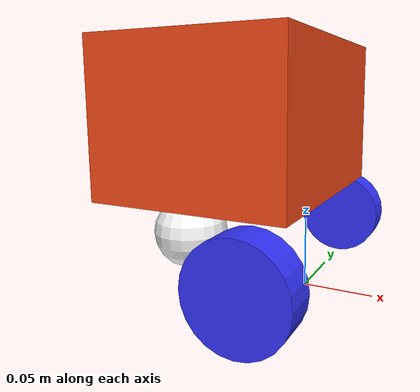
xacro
<?xml version="1.0"?>
<robot xmlns:xacro="http://www.ros.org/wiki/xacro" >

    <xacro:include filename="inertial_macros.xacro"/>

    <xacro:property name="chassis_length" value="0.14"/>
    <xacro:property name="chassis_width" value="0.175"/>
    <xacro:property name="chassis_height" value="0.110"/>
    <xacro:property name="chassis_mass" value="1.0"/>
    <xacro:property name="wheel_radius" value="0.034"/>
    <xacro:property name="wheel_thickness" value="0.025"/>
    <xacro:property name="wheel_mass" value="0.02"/>
    <xacro:property name="chassis_offset_x" value="0.12"/>
    <xacro:property name="wheel_offset_y" value="0.1"/>
    <xacro:property name="chassis_offset_z" value="0.035"/>
    <xacro:property name="caster_wheel_radius" value="0.03"/>
    <xacro:property name="caster_wheel_mass" value="0.04"/>
    <xacro:property name="caster_wheel_offset_x" value="0.02"/>
    <xacro:property name="caster_wheel_offset_z" value="-0.04"/>

     <material name="white">
        <color rgba="1 1 1 1" />
    </material>

    <material name="orange">
        <color rgba="1 0.3 0.1 1"/>
    </material>

    <material name="blue">
        <color rgba="0.2 0.2 1 1"/>
    </material>

    <material name="black">
        <color rgba="0 0 0 1"/>
    </material>

    <material name="red">
        <color rgba="1 0 0 1"/>
    </material>

     <link name="base_footprint"/>

    <!-- BASE LINK -->
    <link name="base_link"></link>

    <!-- BASE_FOOTPRINT LINK -->
    <joint name="base_footprint_joint" type="fixed">
        <parent link="base_footprint"/>
        <child link="base_link"/>
        <origin xyz="0 0 ${wheel_radius}" rpy="0 0 0"/>
    </joint>

    <!-- CHASSIS LINK -->
    <!-- The box origin is at the bottom and back, the chassis relate to base_link is -->
    <!-- chassic move left by ( ${-wheel_offset_x} ) and move up by ${wheel_offset_z}) -->
    <!-- relative to the origin <0, 0, 0>-->
    <joint name="chassis_joint" type="fixed">
        <parent link="base_link"/>
        <child link="chassis"/>
        <origin xyz="${-chassis_offset_x} 0 ${chassis_offset_z}"/>
    </joint>

    <link name="chassis">
        <visual>
            <origin xyz="${chassis_length/2} 0 ${chassis_height/2}"/>
            <geometry>
                <box size="${chassis_length} ${chassis_width} ${chassis_height}"/>
            </geometry>
            <material name="orange"/>
        </visual>
        <collision>
            <origin xyz="${chassis_length/2} 0 ${chassis_height/2}"/>
            <geometry>
                <box size="${chassis_length} ${chassis_width} ${chassis_height}"/>
            </geometry>
        </collision>
        <xacro:inertial_box mass="0.5" x="${chassis_length}" y="${chassis_width}" z="${chassis_height}">
            <origin xyz="${chassis_length/2} 0 ${chassis_height/2}" rpy="0 0 0"/>
        </xacro:inertial_box>
    </link>

    <gazebo reference="chassis">
        <material>Gazebo/Orange</material>
    </gazebo>

    <!-- LEFT WHEEL LINK -->
    <!-- clockwise==(negative rotation) counterclockwise== (positive rotation)-->
    <!-- right hand rule -->
    <!-- axis z is "1", car is moving fordward-->
    <joint name="left_wheel_joint" type="continuous">
        <parent link="base_link"/>
        <child link="left_wheel"/>
        <origin xyz="0 ${wheel_offset_y} 0" rpy="-${pi/2} 0 0" />
        <axis xyz="0 0 1"/>
    </joint>

    <link name="left_wheel">
        <visual>
            <geometry>
                <cylinder radius="${wheel_radius}" length="${wheel_thickness}"/>
            </geometry>
            <material name="blue"/>
        </visual>
        <collision>
            <geometry>
                <sphere radius="${wheel_radius}"/>
            </geometry>
        </collision>
        <xacro:inertial_cylinder mass="${wheel_mass}" length="${wheel_thickness}" radius="${wheel_radius}">
            <origin xyz="0 0 0" rpy="0 0 0"/>
        </xacro:inertial_cylinder>
    </link>

    <gazebo reference="left_wheel">
        <material>Gazebo/Blue</material>
    </gazebo>

    <!-- RIGHT WHEEL LINK -->
    <joint name="right_wheel_joint" type="continuous">
        <parent link="base_link"/>
        <child link="right_wheel"/>
        <origin xyz="0 ${-wheel_offset_y} 0" rpy="${pi/2} 0 0" />
        <axis xyz="0 0 -1"/>
    </joint>

    <link name="right_wheel">
        <visual>
            <geometry>
                <cylinder radius="${wheel_radius}" length="${wheel_thickness}"/>
            </geometry>
            <material name="blue"/>
        </visual>
        <collision>
            <geometry>
                <sphere radius="${wheel_radius}"/>
            </geometry>
        </collision>
        <xacro:inertial_cylinder mass="${wheel_mass}" length="${wheel_thickness}" radius="${wheel_radius}">
            <origin xyz="0 0 0" rpy="0 0 0"/>
        </xacro:inertial_cylinder>
    </link>

    <gazebo reference="right_wheel">
        <material>Gazebo/Blue</material>
    </gazebo>

    <!-- CASTER WHEEL LINK -->

    <joint name="caster_wheel_joint" type="fixed">
        <parent link="chassis"/>
        <child link="caster_wheel"/>
        <origin xyz="${caster_wheel_offset_x} 0 ${caster_wheel_offset_z}"/>
    </joint>

    <link name="caster_wheel">
        <visual>
            <geometry>
                <sphere radius="${caster_wheel_radius}"/>
            </geometry>
            <material name="white"/>
        </visual>
        <collision>
            <geometry>
                <sphere radius="${caster_wheel_radius}"/>
            </geometry>
        </collision>
        <xacro:inertial_sphere mass="${caster_wheel_mass}" radius="${caster_wheel_radius}">
            <origin xyz="0 0 0" rpy="0 0 0"/>
        </xacro:inertial_sphere>
    </link>

    <gazebo reference="caster_wheel">
        <material>Gazebo/White</material>
        <mu1 value="0.001"/>
        <mu2 value="0.001"/>
    </gazebo>

</robot>
